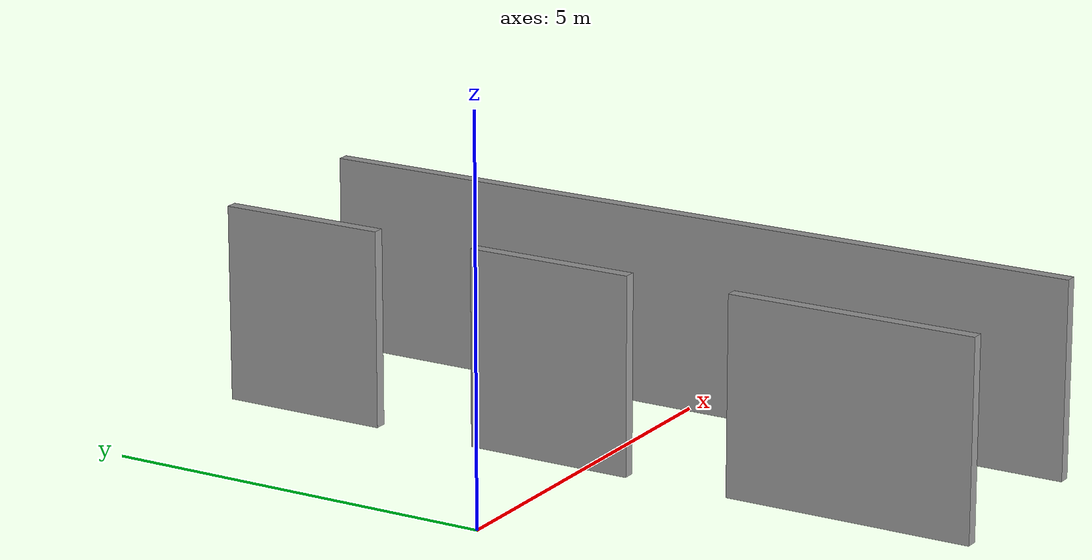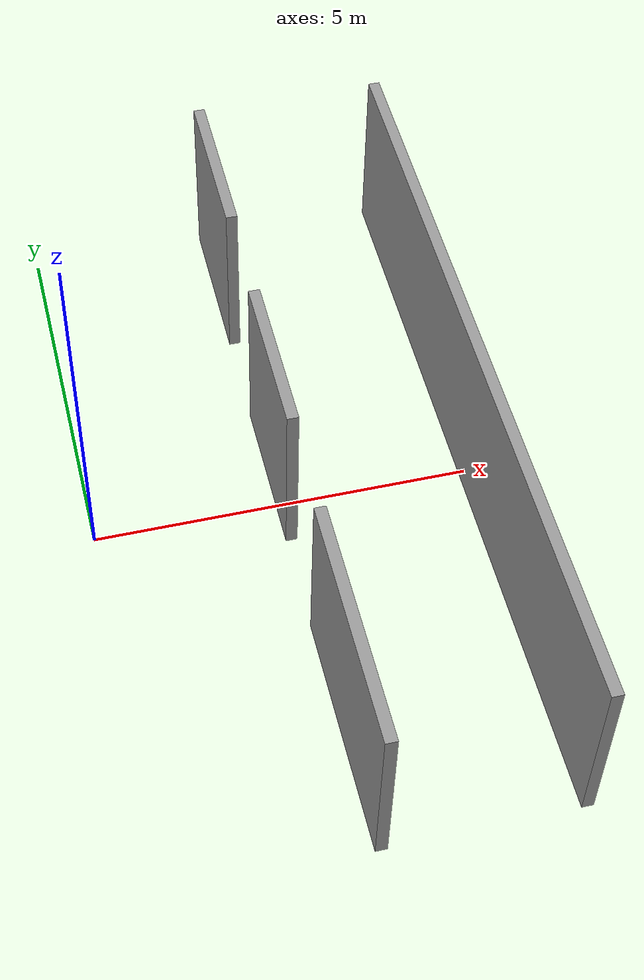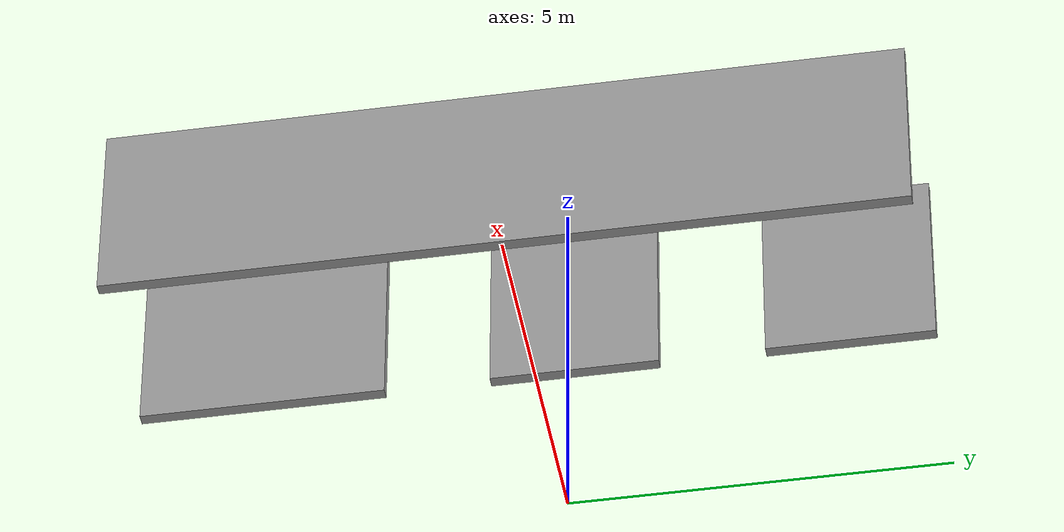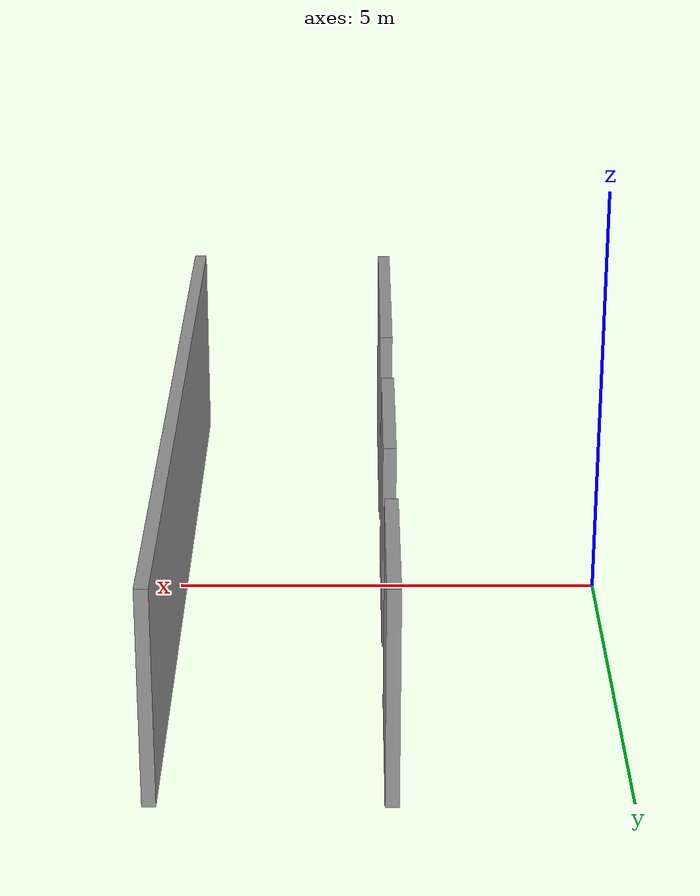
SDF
<?xml version='1.0'?>
<sdf version='1.7'>
  <model name='corrido_withDoors'>
    <pose>2.5375 0 0 0 -0 0</pose>
    <link name='Wall_0'>
      <collision name='Wall_0_Collision'>
        <geometry>
          <box>
            <size>10.15 0.15 2.5</size>
          </box>
        </geometry>
        <pose>0 0 1.25 0 -0 0</pose>
      </collision>
      <visual name='Wall_0_Visual'>
        <pose>0 0 1.25 0 -0 0</pose>
        <geometry>
          <box>
            <size>10.15 0.15 2.5</size>
          </box>
        </geometry>
        <material>
          <script>
            <uri>file://media/materials/scripts/gazebo.material</uri>
            <name>Gazebo/Grey</name>
          </script>
          <ambient>1 1 1 1</ambient>
        </material>
        <meta>
          <layer>0</layer>
        </meta>
      </visual>
      <pose>2.4625 0 0 0 -0 -1.5708</pose>
    </link>
    <link name='Wall_2'>
      <collision name='Wall_2_Collision'>
        <geometry>
          <box>
            <size>2.15 0.15 2.5</size>
          </box>
        </geometry>
        <pose>0 0 1.25 0 -0 0</pose>
      </collision>
      <visual name='Wall_2_Visual'>
        <pose>0 0 1.25 0 -0 0</pose>
        <geometry>
          <box>
            <size>2.15 0.15 2.5</size>
          </box>
        </geometry>
        <material>
          <script>
            <uri>file://media/materials/scripts/gazebo.material</uri>
            <name>Gazebo/Grey</name>
          </script>
          <ambient>1 1 1 1</ambient>
        </material>
        <meta>
          <layer>0</layer>
        </meta>
      </visual>
      <pose>-0.0375 4 0 0 -0 -1.5708</pose>
    </link>
    <link name='Wall_4'>
      <collision name='Wall_4_Collision'>
        <geometry>
          <box>
            <size>2.15 0.15 2.5</size>
          </box>
        </geometry>
        <pose>0 0 1.25 0 -0 0</pose>
      </collision>
      <visual name='Wall_4_Visual'>
        <pose>0 0 1.25 0 -0 0</pose>
        <geometry>
          <box>
            <size>2.15 0.15 2.5</size>
          </box>
        </geometry>
        <material>
          <script>
            <uri>file://media/materials/scripts/gazebo.material</uri>
            <name>Gazebo/Grey</name>
          </script>
          <ambient>1 1 1 1</ambient>
        </material>
        <meta>
          <layer>0</layer>
        </meta>
      </visual>
      <pose>-0.0375 0.5 0 0 -0 -1.5708</pose>
    </link>
    <link name='Wall_6'>
      <collision name='Wall_6_Collision'>
        <geometry>
          <box>
            <size>3.15 0.15 2.5</size>
          </box>
        </geometry>
        <pose>0 0 1.25 0 -0 0</pose>
      </collision>
      <visual name='Wall_6_Visual'>
        <pose>0 0 1.25 0 -0 0</pose>
        <geometry>
          <box>
            <size>3.15 0.15 2.5</size>
          </box>
        </geometry>
        <material>
          <script>
            <uri>file://media/materials/scripts/gazebo.material</uri>
            <name>Gazebo/Grey</name>
          </script>
          <ambient>1 1 1 1</ambient>
        </material>
        <meta>
          <layer>0</layer>
        </meta>
      </visual>
      <pose>-0.0375 -3.5 0 0 -0 -1.5708</pose>
    </link>
    <static>1</static>
  </model>
</sdf>
